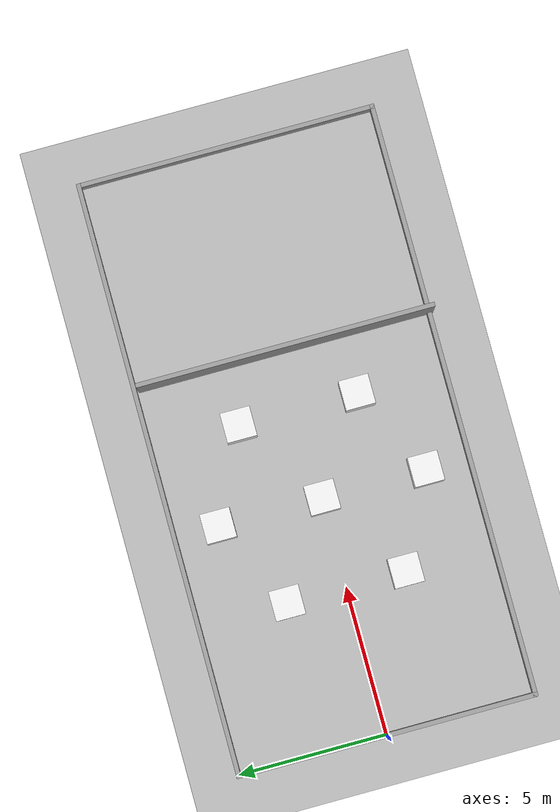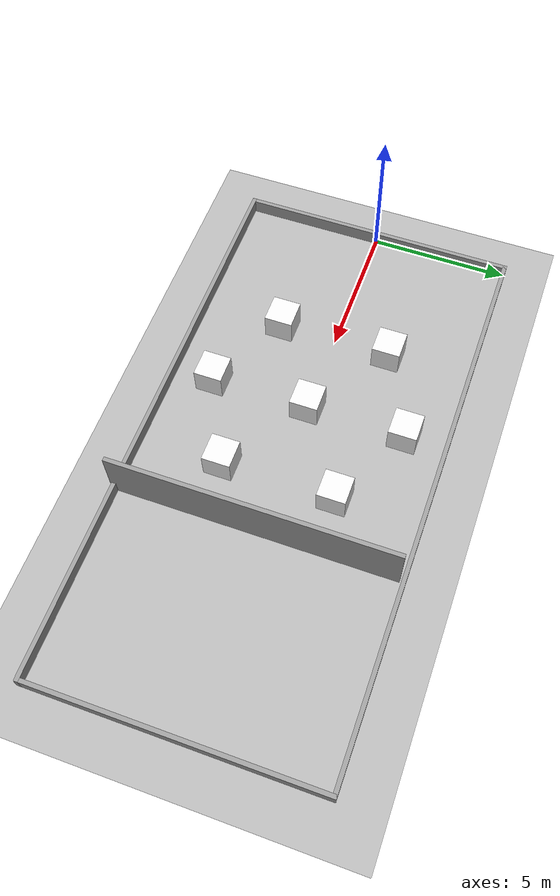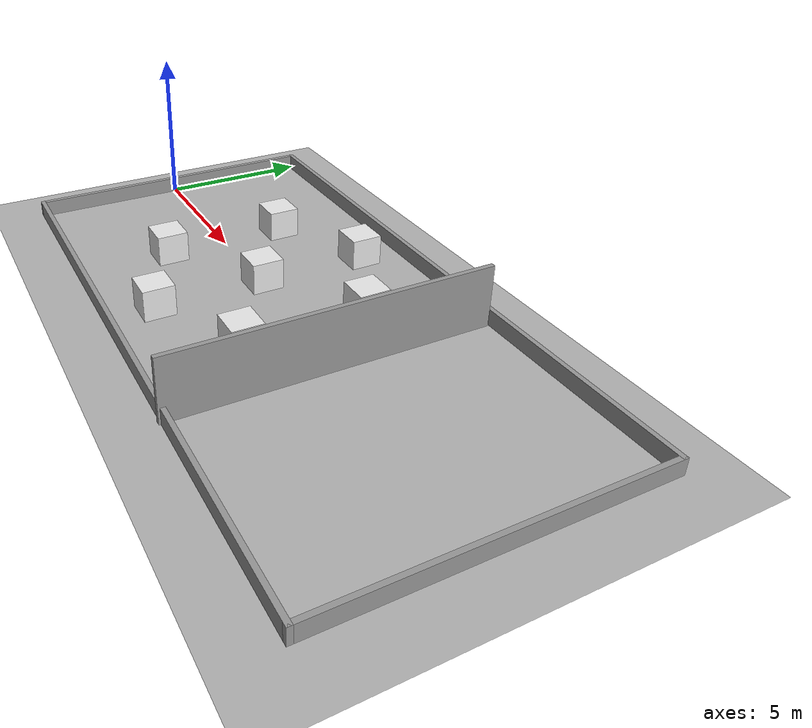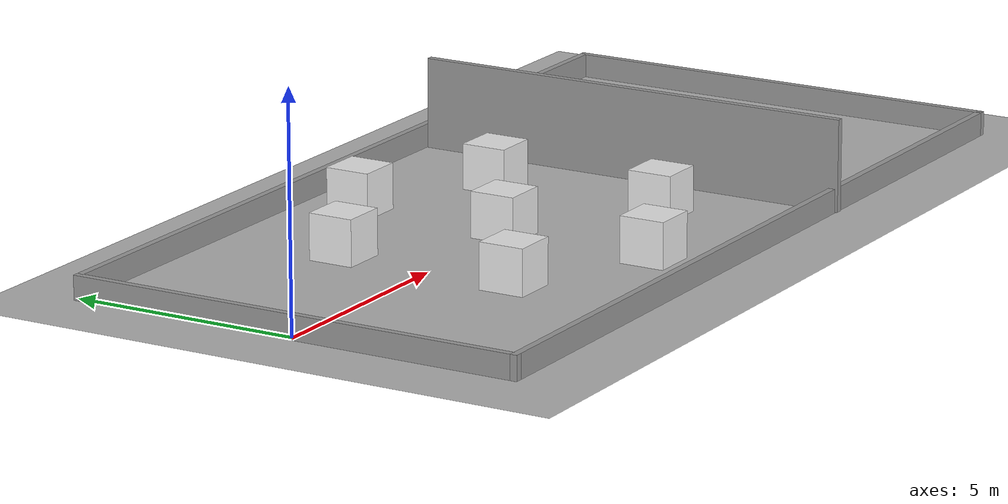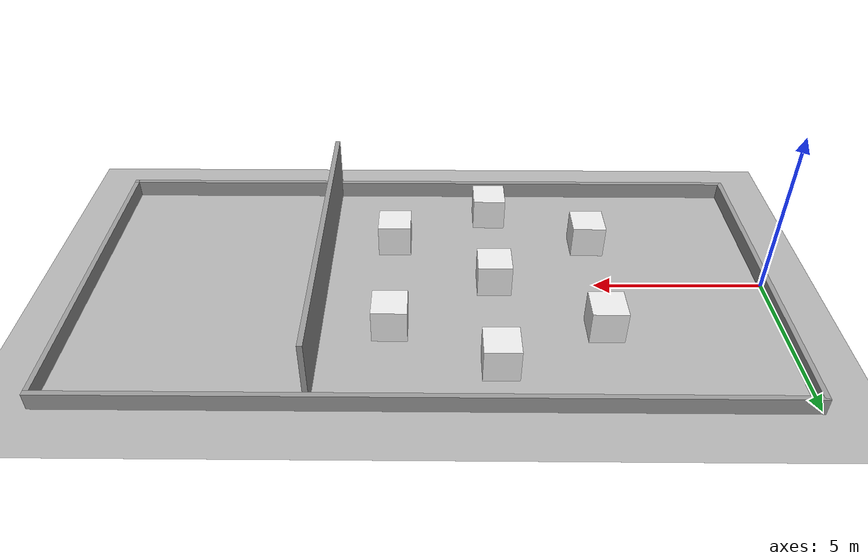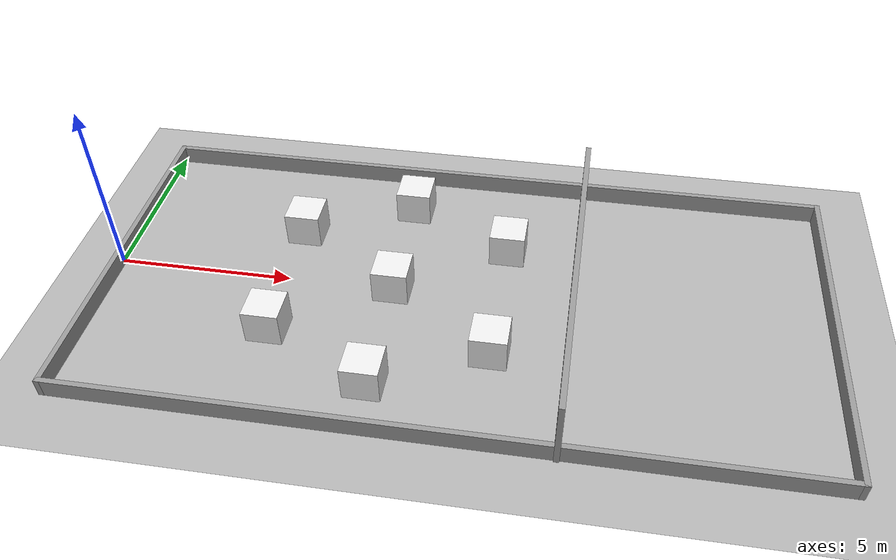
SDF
<sdf version="1.7">
 <world name="default">
  <light name="sun" type="directional">
   <pose>0 0 10 0 -0 0</pose>
   <diffuse>0.8 0.8 0.8 1</diffuse>
   <specular>0.2 0.2 0.2 1</specular>
   <attenuation>
    <range>1000</range>
    <constant>0.9</constant>
    <linear>0.01</linear>
    <quadratic>0.001</quadratic>
   </attenuation>
   <direction>-0.5 0.1 -0.9</direction>
   <spot><inner_angle>0</inner_angle><outer_angle>0</outer_angle><falloff>0</falloff></spot>
  </light>
  <model name="ground_plane">
   <static>1</static>
   <link name="link">
    <collision name="collision">
     <geometry><plane><normal>0 0 1</normal><size>100 100</size></plane></geometry>
     <surface>
      <contact><collide_bitmask>65535</collide_bitmask></contact>
      <friction><ode><mu>20</mu><mu2>20</mu2></ode></friction>
     </surface>
    </collision>
    <visual name="visual">
     <cast_shadows>0</cast_shadows>
     <geometry><plane><normal>0 0 1</normal><size>100 100</size></plane></geometry>
     <material>
      <ambient>0.7 0.7 0.7 1</ambient>
      <diffuse>0.7 0.7 0.7 1</diffuse>
      <specular>0.1 0.1 0.1 1</specular>
      <emissive>0 0 0 0</emissive>
     </material>
    </visual>
   </link>
  </model>
  <gravity>0 0 -9.8</gravity>
  <magnetic_field>6e-06 2.3e-05 -4.2e-05</magnetic_field>
  <atmosphere type="adiabatic"/>
  <physics type="ode">
   <max_step_size>0.001</max_step_size>
   <real_time_factor>1</real_time_factor>
   <real_time_update_rate>1000</real_time_update_rate>
  </physics>
  <scene><ambient>0.4 0.4 0.4 1</ambient><background>0.7 0.7 0.7 1</background><shadows>1</shadows></scene>
  <spherical_coordinates>
   <surface_model>EARTH_WGS84</surface_model>
   <latitude_deg>0</latitude_deg>
   <longitude_deg>0</longitude_deg>
   <elevation>0</elevation>
   <heading_deg>0</heading_deg>
  </spherical_coordinates>
  <model name="box_Wall">
   <pose>10 -0.030866 0 0 -0 0</pose>
   <link name="Wall_0">
    <collision name="Wall_0_Collision">
     <geometry><box><size>10.15 0.15 4</size></box></geometry>
     <pose>0 0 2 0 -0 0</pose>
    </collision>
    <visual name="Wall_0_Visual">
     <geometry><box><size>10.15 0.15 1</size></box></geometry>
     <material>
      <script><uri>file://media/materials/scripts/gazebo.material</uri><name>Gazebo/Grey</name></script>
      <ambient>1 1 1 1</ambient>
     </material>
     <meta><layer>0</layer></meta>
    </visual>
    <pose>-10 0.030866 0 0 -0 1.5708</pose>
   </link>
   <link name="Wall_2">
    <collision name="Wall_2_Collision">
     <geometry><box><size>20.15 0.15 4</size></box></geometry>
     <pose>0 0 2 0 -0 0</pose>
    </collision>
    <visual name="Wall_2_Visual">
     <geometry><box><size>20.15 0.15 1</size></box></geometry>
     <material>
      <script><uri>file://media/materials/scripts/gazebo.material</uri><name>Gazebo/Grey</name></script>
      <ambient>1 1 1 1</ambient>
     </material>
     <meta><layer>0</layer></meta>
    </visual>
    <pose>-0 -4.96913 0 0 -0 0</pose>
   </link>
   <link name="Wall_4">
    <collision name="Wall_4_Collision">
     <geometry><box><size>20.15 0.15 4</size></box></geometry>
     <pose>0 0 2 0 -0 0</pose>
    </collision>
    <visual name="Wall_4_Visual">
     <geometry><box><size>20.15 0.15 1</size></box></geometry>
     <material>
      <script><uri>file://media/materials/scripts/gazebo.material</uri><name>Gazebo/Grey</name></script>
      <ambient>1 1 1 1</ambient>
     </material>
     <meta><layer>0</layer></meta>
    </visual>
    <pose>-0 5.03087 0 0 -0 0</pose>
   </link>
   <link name="Wall_6">
    <collision name="Wall_6_Collision">
     <geometry><box><size>10.15 0.15 4</size></box></geometry>
     <pose>0 0 2 0 -0 0</pose>
    </collision>
    <visual name="Wall_6_Visual">
     <geometry><box><size>10.15 0.15 1</size></box></geometry>
     <material>
      <script><uri>file://media/materials/scripts/gazebo.material</uri><name>Gazebo/Grey</name></script>
      <ambient>1 1 1 1</ambient>
     </material>
     <meta><layer>0</layer></meta>
    </visual>
    <pose>10 0.030866 0 0 -0 -1.5708</pose>
   </link>
   <link name="Wall_8">
    <collision name="Wall_8_Collision">
     <geometry><box><size>10 0.15 2</size></box></geometry>
     <pose>0 2 1 0 -0 0</pose>
    </collision>
    <visual name="Wall_8_Visual">
     <pose>0 0 1 0 -0 0</pose>
     <geometry><box><size>10 0.15 2</size></box></geometry>
     <material>
      <script><uri>file://media/materials/scripts/gazebo.material</uri><name>Gazebo/Grey</name></script>
      <ambient>1 1 1 1</ambient>
     </material>
     <meta><layer>0</layer></meta>
    </visual>
    <pose>3.00672 -0.105866 0 0 -0 -1.5708</pose>
   </link>
   <static>1</static>
  </model>
  <model name="unit_box_clone_1">
   <pose>5 2 0.5 0 -1e-05 0</pose>
   <link name="link">
    <inertial>
     <mass>1</mass>
     <inertia>
      <ixx>0.166667</ixx>
      <ixy>0</ixy>
      <ixz>0</ixz>
      <iyy>0.166667</iyy>
      <iyz>0</iyz>
      <izz>0.166667</izz>
     </inertia>
    </inertial>
    <collision name="collision"><geometry><box><size>1 1 1</size></box></geometry></collision>
    <visual name="visual">
     <geometry><box><size>1 1 1</size></box></geometry>
     <material>
      <script><name>Gazebo/White</name><uri>file://media/materials/scripts/gazebo.material</uri></script>
     </material>
    </visual>
   </link>
  </model>
  <model name="unit_box_clone_2">
   <pose>5 -2 0.5 0 1e-05 0</pose>
   <link name="link">
    <inertial>
     <mass>1</mass>
     <inertia>
      <ixx>0.166667</ixx>
      <ixy>0</ixy>
      <ixz>0</ixz>
      <iyy>0.166667</iyy>
      <iyz>0</iyz>
      <izz>0.166667</izz>
     </inertia>
    </inertial>
    <collision name="collision"><geometry><box><size>1 1 1</size></box></geometry></collision>
    <visual name="visual">
     <geometry><box><size>1 1 1</size></box></geometry>
     <material>
      <script><name>Gazebo/White</name><uri>file://media/materials/scripts/gazebo.material</uri></script>
     </material>
    </visual>
   </link>
  </model>
  <model name="unit_box_clone_3">
   <pose>8 3.5 0.5 -1e-05 -0 -0</pose>
   <link name="link">
    <inertial>
     <mass>1</mass>
     <inertia>
      <ixx>0.166667</ixx>
      <ixy>0</ixy>
      <ixz>0</ixz>
      <iyy>0.166667</iyy>
      <iyz>0</iyz>
      <izz>0.166667</izz>
     </inertia>
    </inertial>
    <collision name="collision"><geometry><box><size>1 1 1</size></box></geometry></collision>
    <visual name="visual">
     <geometry><box><size>1 1 1</size></box></geometry>
     <material>
      <script><name>Gazebo/White</name><uri>file://media/materials/scripts/gazebo.material</uri></script>
     </material>
    </visual>
   </link>
  </model>
  <model name="unit_box_clone_4">
   <pose>8 0 0.5 0 -1e-05 0</pose>
   <link name="link">
    <inertial>
     <mass>1</mass>
     <inertia>
      <ixx>0.166667</ixx>
      <ixy>0</ixy>
      <ixz>0</ixz>
      <iyy>0.166667</iyy>
      <iyz>0</iyz>
      <izz>0.166667</izz>
     </inertia>
    </inertial>
    <collision name="collision"><geometry><box><size>1 1 1</size></box></geometry></collision>
    <visual name="visual">
     <geometry><box><size>1 1 1</size></box></geometry>
     <material>
      <script><name>Gazebo/White</name><uri>file://media/materials/scripts/gazebo.material</uri></script>
     </material>
    </visual>
   </link>
  </model>
  <model name="unit_box_clone_5">
   <pose>8 -3.5 0.5 -1e-05 -0 0</pose>
   <link name="link">
    <inertial>
     <mass>1</mass>
     <inertia>
      <ixx>0.166667</ixx>
      <ixy>0</ixy>
      <ixz>0</ixz>
      <iyy>0.166667</iyy>
      <iyz>0</iyz>
      <izz>0.166667</izz>
     </inertia>
    </inertial>
    <collision name="collision"><geometry><box><size>1 1 1</size></box></geometry></collision>
    <visual name="visual">
     <geometry><box><size>1 1 1</size></box></geometry>
     <material>
      <script><name>Gazebo/White</name><uri>file://media/materials/scripts/gazebo.material</uri></script>
     </material>
    </visual>
   </link>
  </model>
  <model name="unit_box_clone_6">
   <pose>11 2 0.5 0 -1e-05 0</pose>
   <link name="link">
    <inertial>
     <mass>1</mass>
     <inertia>
      <ixx>0.166667</ixx>
      <ixy>0</ixy>
      <ixz>0</ixz>
      <iyy>0.166667</iyy>
      <iyz>0</iyz>
      <izz>0.166667</izz>
     </inertia>
    </inertial>
    <collision name="collision"><geometry><box><size>1 1 1</size></box></geometry></collision>
    <visual name="visual">
     <geometry><box><size>1 1 1</size></box></geometry>
     <material>
      <script><name>Gazebo/White</name><uri>file://media/materials/scripts/gazebo.material</uri></script>
     </material>
    </visual>
   </link>
  </model>
  <model name="unit_box_clone_7">
   <pose>11 -2 0.5 -1e-05 -0 -0</pose>
   <link name="link">
    <inertial>
     <mass>1</mass>
     <inertia>
      <ixx>0.166667</ixx>
      <ixy>0</ixy>
      <ixz>0</ixz>
      <iyy>0.166667</iyy>
      <iyz>0</iyz>
      <izz>0.166667</izz>
     </inertia>
    </inertial>
    <collision name="collision"><geometry><box><size>1 1 1</size></box></geometry></collision>
    <visual name="visual">
     <geometry><box><size>1 1 1</size></box></geometry>
     <material>
      <script><name>Gazebo/White</name><uri>file://media/materials/scripts/gazebo.material</uri></script>
     </material>
    </visual>
   </link>
  </model>
 </world>
</sdf>
